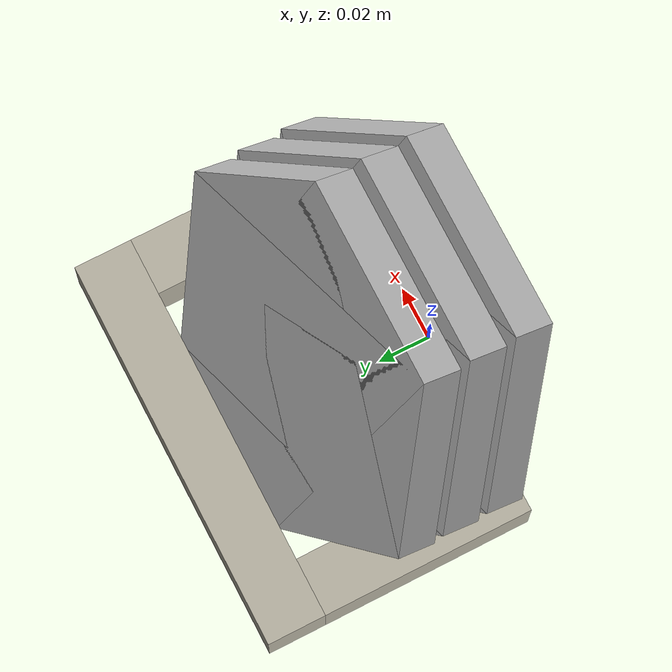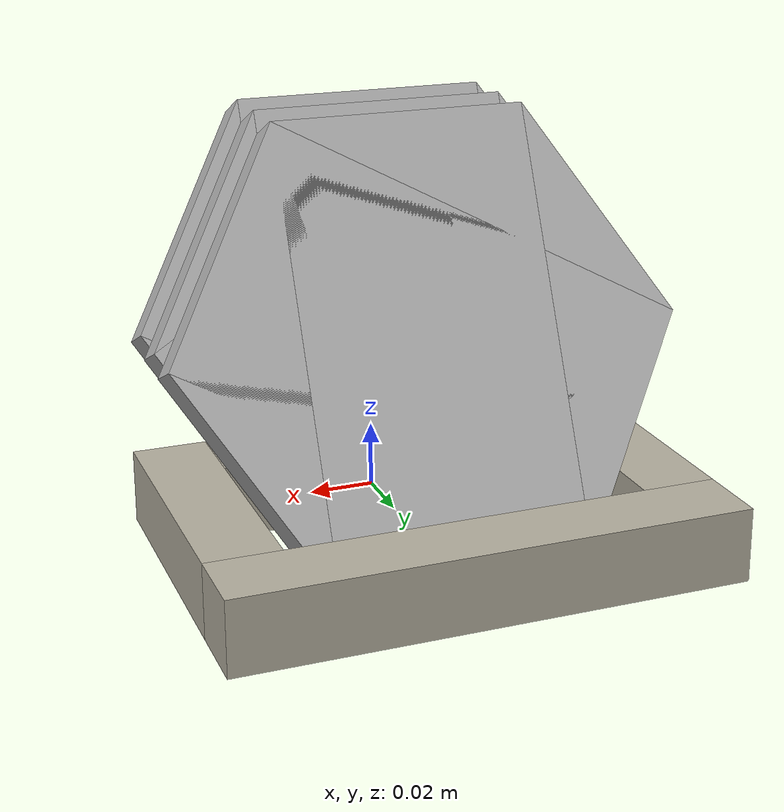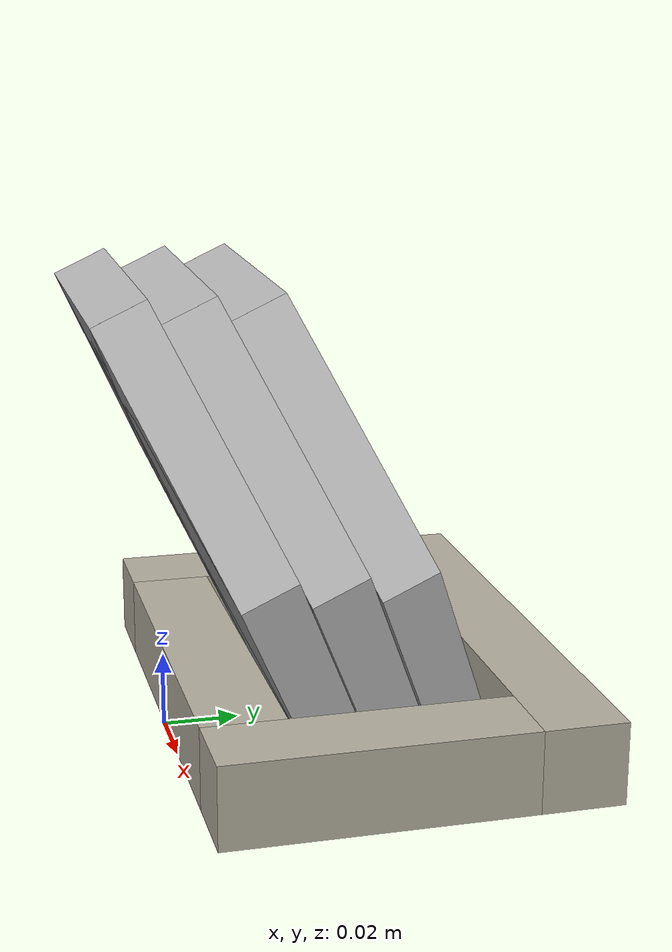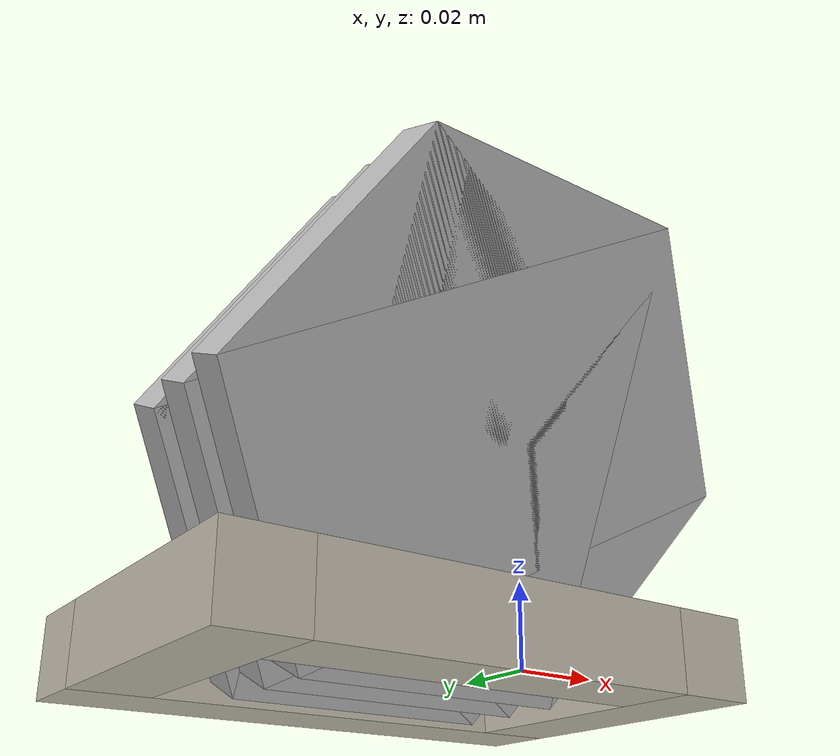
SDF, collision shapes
<?xml version="1.0"?>
<sdf version="1.6">
  <model name="sample_support_table_model">
  <static>true</static>
    <link name="sample_support_table_link">
      <collision name="collision_box_1">
        <pose>0 0.091 0.011 0 0 0</pose>
        <geometry>
          <box>
            <size>0.15 0.022 0.022</size>
          </box>
        </geometry>
      </collision>
      <collision name="collision_box_2">
        <pose>0.064 0.04 0.011 0 0 0</pose>
        <geometry>
          <box>
            <size>0.022 0.08 0.022</size>
          </box>
        </geometry>
      </collision>
      <collision name="collision_box_3">
        <pose>-0.064 0.04 0.011 0 0 0</pose>
        <geometry>
          <box>
            <size>0.022 0.08 0.022</size>
          </box>
        </geometry>
      </collision>
      <collision name="collision_box_4">
        <pose>0 0.011 0.011 0 0 0</pose>
        <geometry>
          <box>
            <size>0.106 0.022 0.022</size>
          </box>
        </geometry>
      </collision>

      <visual name="visual_box_1">
        <pose>0 0.091 0.011 0 0 0</pose>
        <geometry>
          <box>
            <size>0.15 0.022 0.022</size>
          </box>
        </geometry>
        <material>
          <ambient>0.71 0.69 0.63 1.0</ambient>
          <diffuse>0.71 0.69 0.63 1.0</diffuse>
          <specular>0.1 0.1 0.1 1</specular>
          <emissive>0 0 0 0</emissive>
          </material>
      </visual>
      <visual name="visual_box_2">
        <pose>0.064 0.04 0.011 0 0 0</pose>
        <geometry>
          <box>
            <size>0.022 0.08 0.022</size>
          </box>
        </geometry>
        <material>
          <ambient>0.71 0.69 0.63 1.0</ambient>
          <diffuse>0.71 0.69 0.63 1.0</diffuse>
          <specular>0.1 0.1 0.1 1</specular>
          <emissive>0 0 0 0</emissive>
          </material>
      </visual>
      <visual name="visual_box_3">
        <pose>-0.064 0.04 0.011 0 0 0</pose>
        <geometry>
          <box>
            <size>0.022 0.08 0.022</size>
          </box>
        </geometry>
        <material>
          <ambient>0.71 0.69 0.63 1.0</ambient>
          <diffuse>0.71 0.69 0.63 1.0</diffuse>
          <specular>0.1 0.1 0.1 1</specular>
          <emissive>0 0 0 0</emissive>
          </material>
      </visual>
      <visual name="visual_box_4">
        <pose>0 0.011 0.011 0 0 0</pose>
        <geometry>
          <box>
            <size>0.106 0.022 0.022</size>
          </box>
        </geometry>
        <material>
          <ambient>0.71 0.69 0.63 1.0</ambient>
          <diffuse>0.71 0.69 0.63 1.0</diffuse>
          <specular>0.1 0.1 0.1 1</specular>
          <emissive>0 0 0 0</emissive>
          </material>
      </visual>
    </link>

    <include>
      <name>hex_red_in_support_table</name>
        <uri>model://eurobot_22/hexagon_red</uri>
        <pose>0 0.013 0.0615 -1.140 0  0</pose>
    </include>

    <include>
      <name>hex_green_in_support_table</name>
        <uri>model://eurobot_22/hexagon_green</uri>
        <pose>0 0.0295 0.0615 -1.140 0  0</pose>
    </include>

    <include>
      <name>hex_blue_in_support_table</name>
        <uri>model://eurobot_22/hexagon_blue</uri>
        <pose>0 0.046 0.0615 -1.140 0  0</pose>
    </include>

  </model>
</sdf>

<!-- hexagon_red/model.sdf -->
<sdf version="1.6">
  <model name="hexagon_red_model">
  <static>false</static>
  <link name="hexagon_red_link">
      <collision name="hexagon_red_collision_box_1">
        <pose>0.0 0.0 0.0 0.0 0.0 0.5235988 </pose>
        <geometry>
          <box>
            <size>0.1299 0.075 0.015</size>
          </box>
        </geometry>
        <surface>
          <friction>
            <ode>
              <mu>0.5</mu>
              <mu2>0.5</mu2>
            </ode>
          </friction>
        </surface>
      </collision>
      <collision name="hexagon_red_collision_box_2">
        <pose>0.0 0.0 0.0 0.0 0.0 -0.5235988 </pose>
        <geometry>
          <box>
            <size>0.1299 0.075 0.015</size>
          </box>
        </geometry>
        <surface>
          <friction>
            <ode>
              <mu>0.5</mu>
              <mu2>0.5</mu2>
            </ode>
          </friction>
        </surface>
      </collision>
      <collision name="hexagon_red_collision_box_3">
        <pose>0.0 0.0 0.0 0.0 0.0 1.5707 </pose>
        <geometry>
          <box>
            <size>0.1299 0.075 0.015</size>
          </box>
        </geometry>
        <surface>
          <friction>
            <ode>
              <mu>0.5</mu>
              <mu2>0.5</mu2>
            </ode>
          </friction>
        </surface>
      </collision>

      <inertial>
        <inertia> <!-- Iniertia parameters 10x smaller then the correct values to be more stable in simulation -->
          <ixx>0.000703</ixx>
          <ixy>0</ixy>
          <ixz>0</ixz>
          <iyy>0.000703</iyy>
          <iyz>0</iyz>
          <izz>0.000703</izz>
        </inertia>
        <mass>0.1</mass>
      </inertial>
      <visual name="hexagon_red_visual">
        <geometry>
          <mesh>
            <uri>model://eurobot_22/hexagon_red/meshes/hexagon_red.glb</uri>
            <scale>1.0 1.0 1.0</scale>
          </mesh>
        </geometry>
      </visual>
    </link>
  </model>
</sdf>

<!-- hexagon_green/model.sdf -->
<sdf version="1.6">
  <model name="hexagon_green_model">
  <static>false</static>
  <link name="hexagon_green_link">

      <collision name="hexagon_green_collision_box_1">
        <pose>0.0 0.0 0.0 0.0 0.0 0.5235988 </pose>
        <geometry>
          <box>
            <size>0.1299 0.075 0.015</size>
          </box>
        </geometry>
        <surface>
          <friction>
            <ode>
              <mu>0.5</mu>
              <mu2>0.5</mu2>
            </ode>
          </friction>
        </surface>
      </collision>
      <collision name="hexagon_green_collision_box_2">
        <pose>0.0 0.0 0.0 0.0 0.0 -0.5235988 </pose>
        <geometry>
          <box>
            <size>0.1299 0.075 0.015</size>
          </box>
        </geometry>
        <surface>
          <friction>
            <ode>
              <mu>0.5</mu>
              <mu2>0.5</mu2>
            </ode>
          </friction>
        </surface>
      </collision>
      <collision name="hexagon_green_collision_box_3">
        <pose>0.0 0.0 0.0 0.0 0.0 1.5707 </pose>
        <geometry>
          <box>
            <size>0.1299 0.075 0.015</size>
          </box>
        </geometry>
        <surface>
          <friction>
            <ode>
              <mu>0.5</mu>
              <mu2>0.5</mu2>
            </ode>
          </friction>
        </surface>
      </collision>

      <inertial>
        <inertia> <!-- Iniertia parameters 10x smaller then the correct values to be more stable in simulation -->
          <ixx>0.000703</ixx>
          <ixy>0</ixy>
          <ixz>0</ixz>
          <iyy>0.000703</iyy>
          <iyz>0</iyz>
          <izz>0.000703</izz>
        </inertia>
        <mass>0.1</mass>
      </inertial>
      <visual name="hexagon_green_visual">
        <geometry>
          <mesh>
            <uri>model://eurobot_22/hexagon_green/meshes/hexagon_green.glb</uri>
            <scale>1.0 1.0 1.0</scale>
          </mesh>
        </geometry>
      </visual>
    </link>
  </model>
</sdf>

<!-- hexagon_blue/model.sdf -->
<sdf version="1.6">
  <model name="hexagon_blue_model">
  <static>false</static>
  <link name="hexagon_blue_link">
      <collision name="hexagon_blue_collision_box_1">
        <pose>0.0 0.0 0.0 0.0 0.0 0.5235988 </pose>
        <geometry>
          <box>
            <size>0.1299 0.075 0.015</size>
          </box>
        </geometry>
        <surface>
          <friction>
            <ode>
              <mu>0.5</mu>
              <mu2>0.5</mu2>
            </ode>
          </friction>
        </surface>
      </collision>
      <collision name="hexagon_blue_collision_box_2">
        <pose>0.0 0.0 0.0 0.0 0.0 -0.5235988 </pose>
        <geometry>
          <box>
            <size>0.1299 0.075 0.015</size>
          </box>
        </geometry>
        <surface>
          <friction>
            <ode>
              <mu>0.5</mu>
              <mu2>0.5</mu2>
            </ode>
          </friction>
        </surface>
      </collision>
      <collision name="hexagon_blue_collision_box_3">
        <pose>0.0 0.0 0.0 0.0 0.0 1.5707 </pose>
        <geometry>
          <box>
            <size>0.1299 0.075 0.015</size>
          </box>
        </geometry>
        <surface>
          <friction>
            <ode>
              <mu>0.5</mu>
              <mu2>0.5</mu2>
            </ode>
          </friction>
        </surface>
      </collision>

      <inertial>
        <inertia>
          <ixx>0.000703</ixx>
          <ixy>0</ixy>
          <ixz>0</ixz>
          <iyy>0.000703</iyy>
          <iyz>0</iyz>
          <izz>0.000703</izz>
        </inertia>
        <mass>0.1</mass>
      </inertial>
      <visual name="hexagon_blue_visual">
        <geometry>
          <mesh>
            <uri>model://eurobot_22/hexagon_blue/meshes/hexagon_blue.glb</uri>
            <scale>1.0 1.0 1.0</scale>
          </mesh>
        </geometry>
      </visual>
    </link>

  </model>
</sdf>
